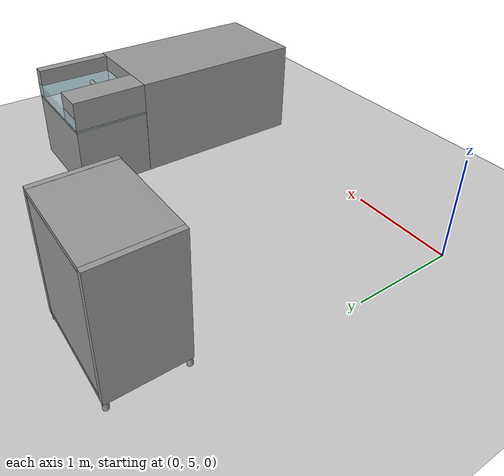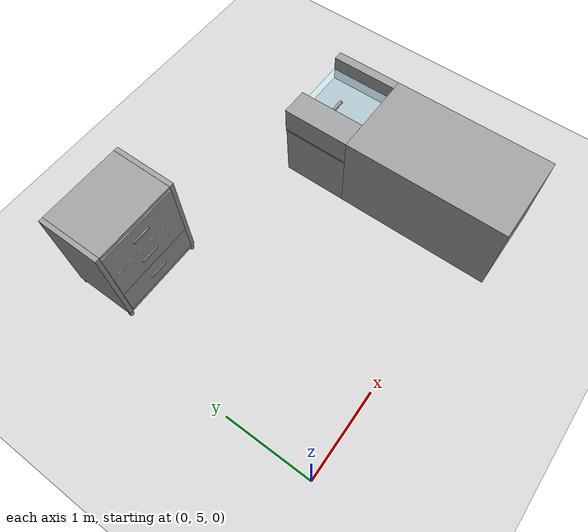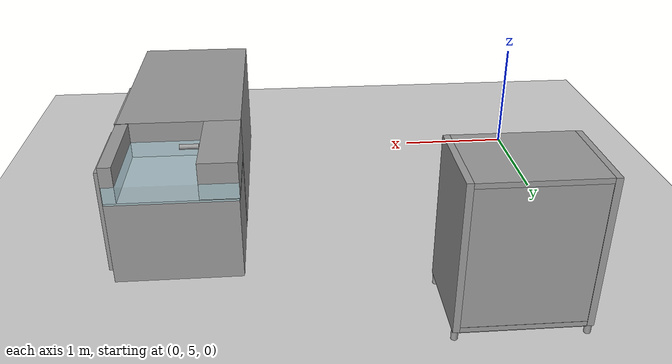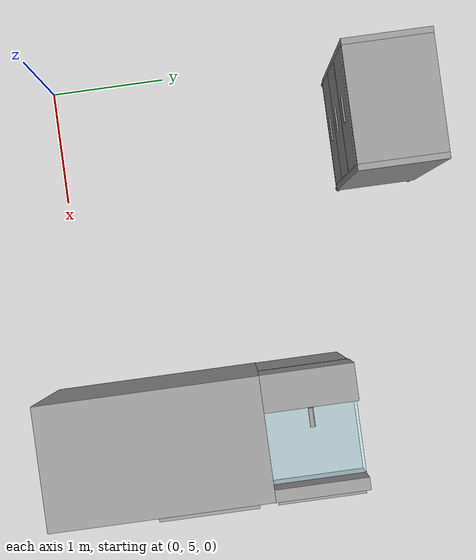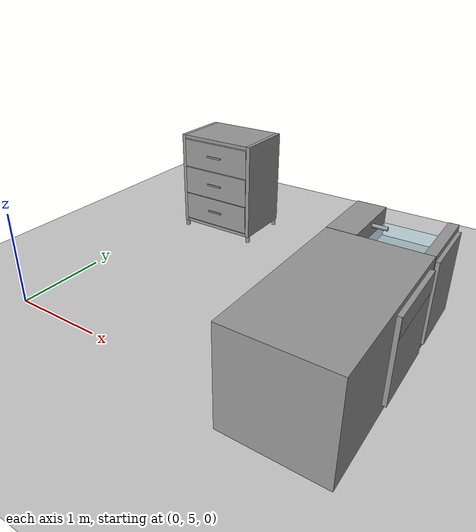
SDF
<sdf version="1.6">
 <world name="default">
  <model name="ground_plane">
   <static>1</static>
   <link name="link">
    <collision name="collision">
     <geometry><plane><normal>0 0 1</normal><size>100 100</size></plane></geometry>
     <surface>
      <contact><collide_bitmask>65535</collide_bitmask></contact>
      <friction><ode><mu>100</mu><mu2>50</mu2></ode></friction>
     </surface>
    </collision>
    <visual name="visual">
     <cast_shadows>0</cast_shadows>
     <geometry><plane><normal>0 0 1</normal><size>100 100</size></plane></geometry>
     <material>
      <script><uri>file://media/materials/scripts/gazebo.material</uri><name>Gazebo/Grey</name></script>
     </material>
    </visual>
   </link>
  </model>
  <model name="my_tall_drawer_0">
   <link name="link">
    <inertial>
     <mass>1</mass>
     <inertia>
      <ixx>0.166667</ixx>
      <ixy>0</ixy>
      <ixz>0</ixz>
      <iyy>0.166667</iyy>
      <iyz>0</iyz>
      <izz>0.166667</izz>
     </inertia>
    </inertial>
    <pose>-0.03613 -0.018536 -0.061909 0 -0 0</pose>
    <visual name="visual">
     <geometry><box><size>0.05 0.9 1.17</size></box></geometry>
     <material>
      <script><name>Gazebo/Grey</name><uri>file://media/materials/scripts/gazebo.material</uri></script>
      <shader type="pixel"><normal_map>__default__</normal_map></shader>
      <ambient>0.9 0.9 0.9 1</ambient>
      <diffuse>0.9 0.9 0.9 1</diffuse>
      <specular>0.01 0.01 0.01 1</specular>
      <emissive>0 0 0 1</emissive>
     </material>
     <pose>0 0 0.725 0 -0 0</pose>
    </visual>
    <collision name="collision">
     <pose>0 0 0.725 0 -0 0</pose>
     <geometry><box><size>0.05 0.9 1.17</size></box></geometry>
     <surface>
      <friction>
       <ode><mu>1</mu><mu2>1</mu2><fdir1>0 0 0</fdir1><slip1>0</slip1><slip2>0</slip2></ode>
       <torsional>
        <coefficient>1</coefficient>
        <patch_radius>0</patch_radius>
        <surface_radius>0</surface_radius>
        <use_patch_radius>1</use_patch_radius>
        <ode><slip>0</slip></ode>
       </torsional>
      </friction>
      <bounce><restitution_coefficient>0</restitution_coefficient><threshold>1e+06</threshold></bounce>
      <contact>
       <collide_without_contact>0</collide_without_contact>
       <collide_without_contact_bitmask>1</collide_without_contact_bitmask>
       <collide_bitmask>1</collide_bitmask>
       <ode>
        <soft_cfm>0</soft_cfm>
        <soft_erp>0.2</soft_erp>
        <kp>1e+13</kp>
        <kd>1</kd>
        <max_vel>0.01</max_vel>
        <min_depth>0</min_depth>
       </ode>
       <bullet>
        <split_impulse>1</split_impulse>
        <split_impulse_penetration_threshold>-0.01</split_impulse_penetration_threshold>
        <soft_cfm>0</soft_cfm>
        <soft_erp>0.2</soft_erp>
        <kp>1e+13</kp>
        <kd>1</kd>
       </bullet>
      </contact>
     </surface>
    </collision>
   </link>
   <link name="link_0">
    <inertial>
     <mass>1</mass>
     <inertia><ixx>0.145833</ixx><ixy>0</ixy><ixz>0</ixz><iyy>0.145833</iyy><iyz>0</iyz><izz>0.125</izz></inertia>
    </inertial>
    <pose>-0.037041 -0.491807 0.517038 0 -0 0</pose>
    <visual name="visual">
     <pose>0 0 -0.47 0 -0 0</pose>
     <geometry><cylinder><radius>0.025</radius><length>0.075</length></cylinder></geometry>
     <material>
      <lighting>1</lighting>
      <script><uri>file://media/materials/scripts/gazebo.material</uri><name>Gazebo/Grey</name></script>
      <shader type="pixel"><normal_map>__default__</normal_map></shader>
      <ambient>0.9 0.9 0.9 0</ambient>
      <diffuse>0.9 0.9 0.9 1</diffuse>
      <specular>0.01 0.01 0.01 1</specular>
      <emissive>0 0 0 1</emissive>
     </material>
    </visual>
    <collision name="collision">
     <pose>0 0 -0.47 0 -0 0</pose>
     <geometry><cylinder><radius>0.025</radius><length>0.075</length></cylinder></geometry>
     <surface>
      <friction>
       <ode><mu>1</mu><mu2>1</mu2><fdir1>0 0 0</fdir1><slip1>0</slip1><slip2>0</slip2></ode>
       <torsional>
        <coefficient>1</coefficient>
        <patch_radius>0</patch_radius>
        <surface_radius>0</surface_radius>
        <use_patch_radius>1</use_patch_radius>
        <ode><slip>0</slip></ode>
       </torsional>
      </friction>
      <bounce><restitution_coefficient>0</restitution_coefficient><threshold>1e+06</threshold></bounce>
      <contact>
       <collide_without_contact>0</collide_without_contact>
       <collide_without_contact_bitmask>1</collide_without_contact_bitmask>
       <collide_bitmask>1</collide_bitmask>
       <ode>
        <soft_cfm>0</soft_cfm>
        <soft_erp>0.2</soft_erp>
        <kp>1e+13</kp>
        <kd>1</kd>
        <max_vel>0.01</max_vel>
        <min_depth>0</min_depth>
       </ode>
       <bullet>
        <split_impulse>1</split_impulse>
        <split_impulse_penetration_threshold>-0.01</split_impulse_penetration_threshold>
        <soft_cfm>0</soft_cfm>
        <soft_erp>0.2</soft_erp>
        <kp>1e+13</kp>
        <kd>1</kd>
       </bullet>
      </contact>
     </surface>
    </collision>
   </link>
   <link name="link_0_clone">
    <inertial>
     <mass>1</mass>
     <inertia>
      <ixx>0.166667</ixx>
      <ixy>0</ixy>
      <ixz>0</ixz>
      <iyy>0.166667</iyy>
      <iyz>0</iyz>
      <izz>0.166667</izz>
     </inertia>
    </inertial>
    <pose>0.649567 -0.03449 1.03588 0 -0 0</pose>
    <gravity>0</gravity>
    <visual name="visual">
     <geometry><box><size>0.012 0.2 0.02</size></box></geometry>
     <material>
      <lighting>1</lighting>
      <script><uri>file://media/materials/scripts/gazebo.material</uri><name>Gazebo/Grey</name></script>
      <shader type="pixel"><normal_map>__default__</normal_map></shader>
      <ambient>0.2 0.2 0.2 0</ambient>
      <diffuse>0.2 0.2 0.2 1</diffuse>
      <specular>0.01 0.01 0.01 1</specular>
      <emissive>0 0 0 1</emissive>
     </material>
    </visual>
    <collision name="collision">
     <geometry><box><size>0.012 0.2 0.02</size></box></geometry>
     <surface>
      <friction>
       <ode><mu>1</mu><mu2>1</mu2><fdir1>0 0 0</fdir1><slip1>0</slip1><slip2>0</slip2></ode>
       <torsional>
        <coefficient>1</coefficient>
        <patch_radius>0</patch_radius>
        <surface_radius>0</surface_radius>
        <use_patch_radius>1</use_patch_radius>
        <ode><slip>0</slip></ode>
       </torsional>
      </friction>
      <bounce><restitution_coefficient>0</restitution_coefficient><threshold>1e+06</threshold></bounce>
      <contact>
       <collide_without_contact>0</collide_without_contact>
       <collide_without_contact_bitmask>1</collide_without_contact_bitmask>
       <collide_bitmask>1</collide_bitmask>
       <ode>
        <soft_cfm>0</soft_cfm>
        <soft_erp>0.2</soft_erp>
        <kp>1e+13</kp>
        <kd>1</kd>
        <max_vel>0.01</max_vel>
        <min_depth>0</min_depth>
       </ode>
       <bullet>
        <split_impulse>1</split_impulse>
        <split_impulse_penetration_threshold>-0.01</split_impulse_penetration_threshold>
        <soft_cfm>0</soft_cfm>
        <soft_erp>0.2</soft_erp>
        <kp>1e+13</kp>
        <kd>1</kd>
       </bullet>
      </contact>
     </surface>
    </collision>
   </link>
   <link name="link_0_clone_0">
    <inertial>
     <mass>1</mass>
     <inertia><ixx>0.145833</ixx><ixy>0</ixy><ixz>0</ixz><iyy>0.145833</iyy><iyz>0</iyz><izz>0.125</izz></inertia>
    </inertial>
    <pose>0.611334 -0.496528 0.517038 0 -0 0</pose>
    <visual name="visual">
     <pose>0 0 -0.47 0 -0 0</pose>
     <geometry><cylinder><radius>0.025</radius><length>0.075</length></cylinder></geometry>
     <material>
      <lighting>1</lighting>
      <script><uri>file://media/materials/scripts/gazebo.material</uri><name>Gazebo/Grey</name></script>
      <shader type="pixel"><normal_map>__default__</normal_map></shader>
      <ambient>0.9 0.9 0.9 0</ambient>
      <diffuse>0.9 0.9 0.9 1</diffuse>
      <specular>0.01 0.01 0.01 1</specular>
      <emissive>0 0 0 1</emissive>
     </material>
    </visual>
    <collision name="collision">
     <pose>0 0 -0.47 0 -0 0</pose>
     <geometry><cylinder><radius>0.025</radius><length>0.075</length></cylinder></geometry>
     <surface>
      <friction>
       <ode><mu>1</mu><mu2>1</mu2><fdir1>0 0 0</fdir1><slip1>0</slip1><slip2>0</slip2></ode>
       <torsional>
        <coefficient>1</coefficient>
        <patch_radius>0</patch_radius>
        <surface_radius>0</surface_radius>
        <use_patch_radius>1</use_patch_radius>
        <ode><slip>0</slip></ode>
       </torsional>
      </friction>
      <bounce><restitution_coefficient>0</restitution_coefficient><threshold>1e+06</threshold></bounce>
      <contact>
       <collide_without_contact>0</collide_without_contact>
       <collide_without_contact_bitmask>1</collide_without_contact_bitmask>
       <collide_bitmask>1</collide_bitmask>
       <ode>
        <soft_cfm>0</soft_cfm>
        <soft_erp>0.2</soft_erp>
        <kp>1e+13</kp>
        <kd>1</kd>
        <max_vel>0.01</max_vel>
        <min_depth>0</min_depth>
       </ode>
       <bullet>
        <split_impulse>1</split_impulse>
        <split_impulse_penetration_threshold>-0.01</split_impulse_penetration_threshold>
        <soft_cfm>0</soft_cfm>
        <soft_erp>0.2</soft_erp>
        <kp>1e+13</kp>
        <kd>1</kd>
       </bullet>
      </contact>
     </surface>
    </collision>
   </link>
   <link name="link_0_clone_1">
    <inertial>
     <mass>1</mass>
     <inertia><ixx>0.145833</ixx><ixy>0</ixy><ixz>0</ixz><iyy>0.145833</iyy><iyz>0</iyz><izz>0.125</izz></inertia>
    </inertial>
    <pose>-0.03182 0.454415 0.517038 0 -0 0</pose>
    <visual name="visual">
     <pose>0 0 -0.47 0 -0 0</pose>
     <geometry><cylinder><radius>0.025</radius><length>0.075</length></cylinder></geometry>
     <material>
      <lighting>1</lighting>
      <script><uri>file://media/materials/scripts/gazebo.material</uri><name>Gazebo/Grey</name></script>
      <shader type="pixel"><normal_map>__default__</normal_map></shader>
      <ambient>0.9 0.9 0.9 0</ambient>
      <diffuse>0.9 0.9 0.9 1</diffuse>
      <specular>0.01 0.01 0.01 1</specular>
      <emissive>0 0 0 1</emissive>
     </material>
    </visual>
    <collision name="collision">
     <pose>0 0 -0.47 0 -0 0</pose>
     <geometry><cylinder><radius>0.025</radius><length>0.075</length></cylinder></geometry>
     <surface>
      <friction>
       <ode><mu>1</mu><mu2>1</mu2><fdir1>0 0 0</fdir1><slip1>0</slip1><slip2>0</slip2></ode>
       <torsional>
        <coefficient>1</coefficient>
        <patch_radius>0</patch_radius>
        <surface_radius>0</surface_radius>
        <use_patch_radius>1</use_patch_radius>
        <ode><slip>0</slip></ode>
       </torsional>
      </friction>
      <bounce><restitution_coefficient>0</restitution_coefficient><threshold>1e+06</threshold></bounce>
      <contact>
       <collide_without_contact>0</collide_without_contact>
       <collide_without_contact_bitmask>1</collide_without_contact_bitmask>
       <collide_bitmask>1</collide_bitmask>
       <ode>
        <soft_cfm>0</soft_cfm>
        <soft_erp>0.2</soft_erp>
        <kp>1e+13</kp>
        <kd>1</kd>
        <max_vel>0.01</max_vel>
        <min_depth>0</min_depth>
       </ode>
       <bullet>
        <split_impulse>1</split_impulse>
        <split_impulse_penetration_threshold>-0.01</split_impulse_penetration_threshold>
        <soft_cfm>0</soft_cfm>
        <soft_erp>0.2</soft_erp>
        <kp>1e+13</kp>
        <kd>1</kd>
       </bullet>
      </contact>
     </surface>
    </collision>
   </link>
   <link name="link_0_clone_2">
    <inertial>
     <mass>1</mass>
     <inertia><ixx>0.145833</ixx><ixy>0</ixy><ixz>0</ixz><iyy>0.145833</iyy><iyz>0</iyz><izz>0.125</izz></inertia>
    </inertial>
    <pose>0.607914 0.452464 0.517038 0 -0 0</pose>
    <visual name="visual">
     <pose>0 0 -0.47 0 -0 0</pose>
     <geometry><cylinder><radius>0.025</radius><length>0.075</length></cylinder></geometry>
     <material>
      <lighting>1</lighting>
      <script><uri>file://media/materials/scripts/gazebo.material</uri><name>Gazebo/Grey</name></script>
      <shader type="pixel"><normal_map>__default__</normal_map></shader>
      <ambient>0.9 0.9 0.9 0</ambient>
      <diffuse>0.9 0.9 0.9 1</diffuse>
      <specular>0.01 0.01 0.01 1</specular>
      <emissive>0 0 0 1</emissive>
     </material>
    </visual>
    <collision name="collision">
     <pose>0 0 -0.47 0 -0 0</pose>
     <geometry><cylinder><radius>0.025</radius><length>0.075</length></cylinder></geometry>
     <surface>
      <friction>
       <ode><mu>1</mu><mu2>1</mu2><fdir1>0 0 0</fdir1><slip1>0</slip1><slip2>0</slip2></ode>
       <torsional>
        <coefficient>1</coefficient>
        <patch_radius>0</patch_radius>
        <surface_radius>0</surface_radius>
        <use_patch_radius>1</use_patch_radius>
        <ode><slip>0</slip></ode>
       </torsional>
      </friction>
      <bounce><restitution_coefficient>0</restitution_coefficient><threshold>1e+06</threshold></bounce>
      <contact>
       <collide_without_contact>0</collide_without_contact>
       <collide_without_contact_bitmask>1</collide_without_contact_bitmask>
       <collide_bitmask>1</collide_bitmask>
       <ode>
        <soft_cfm>0</soft_cfm>
        <soft_erp>0.2</soft_erp>
        <kp>1e+13</kp>
        <kd>1</kd>
        <max_vel>0.01</max_vel>
        <min_depth>0</min_depth>
       </ode>
       <bullet>
        <split_impulse>1</split_impulse>
        <split_impulse_penetration_threshold>-0.01</split_impulse_penetration_threshold>
        <soft_cfm>0</soft_cfm>
        <soft_erp>0.2</soft_erp>
        <kp>1e+13</kp>
        <kd>1</kd>
       </bullet>
      </contact>
     </surface>
    </collision>
   </link>
   <link name="link_0_clone_clone">
    <inertial>
     <mass>1</mass>
     <inertia>
      <ixx>0.166667</ixx>
      <ixy>0</ixy>
      <ixz>0</ixz>
      <iyy>0.166667</iyy>
      <iyz>0</iyz>
      <izz>0.166667</izz>
     </inertia>
    </inertial>
    <pose>0.648574 -0.032127 0.308738 0 -0 0</pose>
    <gravity>0</gravity>
    <visual name="visual">
     <geometry><box><size>0.012 0.2 0.02</size></box></geometry>
     <material>
      <lighting>1</lighting>
      <script><uri>file://media/materials/scripts/gazebo.material</uri><name>Gazebo/Grey</name></script>
      <shader type="pixel"><normal_map>__default__</normal_map></shader>
      <ambient>0.2 0.2 0.2 0</ambient>
      <diffuse>0.2 0.2 0.2 1</diffuse>
      <specular>0.01 0.01 0.01 1</specular>
      <emissive>0 0 0 1</emissive>
     </material>
    </visual>
    <collision name="collision">
     <geometry><box><size>0.012 0.2 0.02</size></box></geometry>
     <surface>
      <friction>
       <ode><mu>1</mu><mu2>1</mu2><fdir1>0 0 0</fdir1><slip1>0</slip1><slip2>0</slip2></ode>
       <torsional>
        <coefficient>1</coefficient>
        <patch_radius>0</patch_radius>
        <surface_radius>0</surface_radius>
        <use_patch_radius>1</use_patch_radius>
        <ode><slip>0</slip></ode>
       </torsional>
      </friction>
      <bounce><restitution_coefficient>0</restitution_coefficient><threshold>1e+06</threshold></bounce>
      <contact>
       <collide_without_contact>0</collide_without_contact>
       <collide_without_contact_bitmask>1</collide_without_contact_bitmask>
       <collide_bitmask>1</collide_bitmask>
       <ode>
        <soft_cfm>0</soft_cfm>
        <soft_erp>0.2</soft_erp>
        <kp>1e+13</kp>
        <kd>1</kd>
        <max_vel>0.01</max_vel>
        <min_depth>0</min_depth>
       </ode>
       <bullet>
        <split_impulse>1</split_impulse>
        <split_impulse_penetration_threshold>-0.01</split_impulse_penetration_threshold>
        <soft_cfm>0</soft_cfm>
        <soft_erp>0.2</soft_erp>
        <kp>1e+13</kp>
        <kd>1</kd>
       </bullet>
      </contact>
     </surface>
    </collision>
   </link>
   <link name="link_0_clone_clone_0">
    <inertial>
     <mass>1</mass>
     <inertia>
      <ixx>0.166667</ixx>
      <ixy>0</ixy>
      <ixz>0</ixz>
      <iyy>0.166667</iyy>
      <iyz>0</iyz>
      <izz>0.166667</izz>
     </inertia>
    </inertial>
    <pose>0.650881 -0.037424 0.670231 0 -0 0</pose>
    <gravity>0</gravity>
    <visual name="visual">
     <geometry><box><size>0.012 0.2 0.02</size></box></geometry>
     <material>
      <lighting>1</lighting>
      <script><uri>file://media/materials/scripts/gazebo.material</uri><name>Gazebo/Grey</name></script>
      <shader type="pixel"><normal_map>__default__</normal_map></shader>
      <ambient>0.2 0.2 0.2 0</ambient>
      <diffuse>0.2 0.2 0.2 1</diffuse>
      <specular>0.01 0.01 0.01 1</specular>
      <emissive>0 0 0 1</emissive>
     </material>
    </visual>
    <collision name="collision">
     <geometry><box><size>0.012 0.2 0.02</size></box></geometry>
     <surface>
      <friction>
       <ode><mu>1</mu><mu2>1</mu2><fdir1>0 0 0</fdir1><slip1>0</slip1><slip2>0</slip2></ode>
       <torsional>
        <coefficient>1</coefficient>
        <patch_radius>0</patch_radius>
        <surface_radius>0</surface_radius>
        <use_patch_radius>1</use_patch_radius>
        <ode><slip>0</slip></ode>
       </torsional>
      </friction>
      <bounce><restitution_coefficient>0</restitution_coefficient><threshold>1e+06</threshold></bounce>
      <contact>
       <collide_without_contact>0</collide_without_contact>
       <collide_without_contact_bitmask>1</collide_without_contact_bitmask>
       <collide_bitmask>1</collide_bitmask>
       <ode>
        <soft_cfm>0</soft_cfm>
        <soft_erp>0.2</soft_erp>
        <kp>1e+13</kp>
        <kd>1</kd>
        <max_vel>0.01</max_vel>
        <min_depth>0</min_depth>
       </ode>
       <bullet>
        <split_impulse>1</split_impulse>
        <split_impulse_penetration_threshold>-0.01</split_impulse_penetration_threshold>
        <soft_cfm>0</soft_cfm>
        <soft_erp>0.2</soft_erp>
        <kp>1e+13</kp>
        <kd>1</kd>
       </bullet>
      </contact>
     </surface>
    </collision>
   </link>
   <link name="link_clone">
    <inertial>
     <mass>1</mass>
     <inertia>
      <ixx>0.166667</ixx>
      <ixy>0</ixy>
      <ixz>0</ixz>
      <iyy>0.166667</iyy>
      <iyz>0</iyz>
      <izz>0.166667</izz>
     </inertia>
    </inertial>
    <pose>0.28891 -0.018651 -1.19613 1.1e-05 -0.001065 2e-06</pose>
    <visual name="visual">
     <geometry><box><size>0.7 0.9 0.04</size></box></geometry>
     <material>
      <script><name>Gazebo/Grey</name><uri>file://media/materials/scripts/gazebo.material</uri></script>
      <shader type="pixel"><normal_map>__default__</normal_map></shader>
      <ambient>0.9 0.9 0.9 1</ambient>
      <diffuse>0.9 0.9 0.9 1</diffuse>
      <specular>0.01 0.01 0.01 1</specular>
      <emissive>0 0 0 1</emissive>
     </material>
     <pose>0 0 1.3 0 -0 0</pose>
    </visual>
    <collision name="collision">
     <pose>0 0 1.3 0 -0 0</pose>
     <geometry><box><size>0.7 0.9 0.04</size></box></geometry>
     <surface>
      <friction>
       <ode><mu>1</mu><mu2>1</mu2><fdir1>0 0 0</fdir1><slip1>0</slip1><slip2>0</slip2></ode>
       <torsional>
        <coefficient>1</coefficient>
        <patch_radius>0</patch_radius>
        <surface_radius>0</surface_radius>
        <use_patch_radius>1</use_patch_radius>
        <ode><slip>0</slip></ode>
       </torsional>
      </friction>
      <bounce><restitution_coefficient>0</restitution_coefficient><threshold>1e+06</threshold></bounce>
      <contact>
       <collide_without_contact>0</collide_without_contact>
       <collide_without_contact_bitmask>1</collide_without_contact_bitmask>
       <collide_bitmask>1</collide_bitmask>
       <ode>
        <soft_cfm>0</soft_cfm>
        <soft_erp>0.2</soft_erp>
        <kp>1e+13</kp>
        <kd>1</kd>
        <max_vel>0.01</max_vel>
        <min_depth>0</min_depth>
       </ode>
       <bullet>
        <split_impulse>1</split_impulse>
        <split_impulse_penetration_threshold>-0.01</split_impulse_penetration_threshold>
        <soft_cfm>0</soft_cfm>
        <soft_erp>0.2</soft_erp>
        <kp>1e+13</kp>
        <kd>1</kd>
       </bullet>
      </contact>
     </surface>
    </collision>
   </link>
   <link name="link_clone_0">
    <inertial>
     <mass>1</mass>
     <inertia>
      <ixx>0.166667</ixx>
      <ixy>0</ixy>
      <ixz>0</ixz>
      <iyy>0.166667</iyy>
      <iyz>0</iyz>
      <izz>0.166667</izz>
     </inertia>
    </inertial>
    <pose>0.285628 -0.49449 -0.040786 0 -0 0</pose>
    <visual name="visual">
     <geometry><box><size>0.05 0.7 1.17</size></box></geometry>
     <material>
      <script><name>Gazebo/Grey</name><uri>file://media/materials/scripts/gazebo.material</uri></script>
      <shader type="pixel"><normal_map>__default__</normal_map></shader>
      <ambient>0.9 0.9 0.9 1</ambient>
      <diffuse>0.9 0.9 0.9 1</diffuse>
      <specular>0.01 0.01 0.01 1</specular>
      <emissive>0 0 0 1</emissive>
     </material>
     <pose>0 0 0.71 0 -0 1.5707</pose>
    </visual>
    <collision name="collision">
     <pose>0 0 0.71 0 -0 1.5707</pose>
     <geometry><box><size>0.05 0.7 1.17</size></box></geometry>
     <surface>
      <friction>
       <ode><mu>1</mu><mu2>1</mu2><fdir1>0 0 0</fdir1><slip1>0</slip1><slip2>0</slip2></ode>
       <torsional>
        <coefficient>1</coefficient>
        <patch_radius>0</patch_radius>
        <surface_radius>0</surface_radius>
        <use_patch_radius>1</use_patch_radius>
        <ode><slip>0</slip></ode>
       </torsional>
      </friction>
      <bounce><restitution_coefficient>0</restitution_coefficient><threshold>1e+06</threshold></bounce>
      <contact>
       <collide_without_contact>0</collide_without_contact>
       <collide_without_contact_bitmask>1</collide_without_contact_bitmask>
       <collide_bitmask>1</collide_bitmask>
       <ode>
        <soft_cfm>0</soft_cfm>
        <soft_erp>0.2</soft_erp>
        <kp>1e+13</kp>
        <kd>1</kd>
        <max_vel>0.01</max_vel>
        <min_depth>0</min_depth>
       </ode>
       <bullet>
        <split_impulse>1</split_impulse>
        <split_impulse_penetration_threshold>-0.01</split_impulse_penetration_threshold>
        <soft_cfm>0</soft_cfm>
        <soft_erp>0.2</soft_erp>
        <kp>1e+13</kp>
        <kd>1</kd>
       </bullet>
      </contact>
     </surface>
    </collision>
   </link>
   <link name="link_clone_0_clone">
    <inertial>
     <mass>1</mass>
     <inertia>
      <ixx>0.166667</ixx>
      <ixy>0</ixy>
      <ixz>0</ixz>
      <iyy>0.166667</iyy>
      <iyz>0</iyz>
      <izz>0.166667</izz>
     </inertia>
    </inertial>
    <pose>0.286617 0.453061 -0.03976 0 -0 0</pose>
    <visual name="visual">
     <geometry><box><size>0.05 0.7 1.17</size></box></geometry>
     <material>
      <script><name>Gazebo/Grey</name><uri>file://media/materials/scripts/gazebo.material</uri></script>
      <shader type="pixel"><normal_map>__default__</normal_map></shader>
      <ambient>0.9 0.9 0.9 1</ambient>
      <diffuse>0.9 0.9 0.9 1</diffuse>
      <specular>0.01 0.01 0.01 1</specular>
      <emissive>0 0 0 1</emissive>
     </material>
     <pose>0 0 0.71 0 -0 1.5707</pose>
    </visual>
    <collision name="collision">
     <pose>0 0 0.71 0 -0 1.5707</pose>
     <geometry><box><size>0.05 0.7 1.17</size></box></geometry>
     <surface>
      <friction>
       <ode><mu>1</mu><mu2>1</mu2><fdir1>0 0 0</fdir1><slip1>0</slip1><slip2>0</slip2></ode>
       <torsional>
        <coefficient>1</coefficient>
        <patch_radius>0</patch_radius>
        <surface_radius>0</surface_radius>
        <use_patch_radius>1</use_patch_radius>
        <ode><slip>0</slip></ode>
       </torsional>
      </friction>
      <bounce><restitution_coefficient>0</restitution_coefficient><threshold>1e+06</threshold></bounce>
      <contact>
       <collide_without_contact>0</collide_without_contact>
       <collide_without_contact_bitmask>1</collide_without_contact_bitmask>
       <collide_bitmask>1</collide_bitmask>
       <ode>
        <soft_cfm>0</soft_cfm>
        <soft_erp>0.2</soft_erp>
        <kp>1e+13</kp>
        <kd>1</kd>
        <max_vel>0.01</max_vel>
        <min_depth>0</min_depth>
       </ode>
       <bullet>
        <split_impulse>1</split_impulse>
        <split_impulse_penetration_threshold>-0.01</split_impulse_penetration_threshold>
        <soft_cfm>0</soft_cfm>
        <soft_erp>0.2</soft_erp>
        <kp>1e+13</kp>
        <kd>1</kd>
       </bullet>
      </contact>
     </surface>
    </collision>
   </link>
   <link name="link_clone_1_clone">
    <inertial>
     <mass>1</mass>
     <inertia>
      <ixx>0.166667</ixx>
      <ixy>0</ixy>
      <ixz>0</ixz>
      <iyy>0.166667</iyy>
      <iyz>0</iyz>
      <izz>0.166667</izz>
     </inertia>
    </inertial>
    <pose>0.617981 -0.022509 -0.070781 0 -0 0</pose>
    <visual name="visual">
     <geometry><box><size>0.05 0.9 0.35</size></box></geometry>
     <material>
      <script><name>Gazebo/Grey</name><uri>file://media/materials/scripts/gazebo.material</uri></script>
      <shader type="pixel"><normal_map>__default__</normal_map></shader>
      <ambient>0.9 0.9 0.9 1</ambient>
      <diffuse>0.9 0.9 0.9 1</diffuse>
      <specular>0.01 0.01 0.01 1</specular>
      <emissive>0 0 0 1</emissive>
     </material>
     <pose>0 0 0.38 0 -0 0</pose>
    </visual>
    <collision name="collision">
     <pose>0 0 0.38 0 -0 0</pose>
     <geometry><box><size>0.05 0.9 0.35</size></box></geometry>
     <surface>
      <friction>
       <ode><mu>1</mu><mu2>1</mu2><fdir1>0 0 0</fdir1><slip1>0</slip1><slip2>0</slip2></ode>
       <torsional>
        <coefficient>1</coefficient>
        <patch_radius>0</patch_radius>
        <surface_radius>0</surface_radius>
        <use_patch_radius>1</use_patch_radius>
        <ode><slip>0</slip></ode>
       </torsional>
      </friction>
      <bounce><restitution_coefficient>0</restitution_coefficient><threshold>1e+06</threshold></bounce>
      <contact>
       <collide_without_contact>0</collide_without_contact>
       <collide_without_contact_bitmask>1</collide_without_contact_bitmask>
       <collide_bitmask>1</collide_bitmask>
       <ode>
        <soft_cfm>0</soft_cfm>
        <soft_erp>0.2</soft_erp>
        <kp>1e+13</kp>
        <kd>1</kd>
        <max_vel>0.01</max_vel>
        <min_depth>0</min_depth>
       </ode>
       <bullet>
        <split_impulse>1</split_impulse>
        <split_impulse_penetration_threshold>-0.01</split_impulse_penetration_threshold>
        <soft_cfm>0</soft_cfm>
        <soft_erp>0.2</soft_erp>
        <kp>1e+13</kp>
        <kd>1</kd>
       </bullet>
      </contact>
     </surface>
    </collision>
   </link>
   <link name="link_clone_1_clone_clone">
    <inertial>
     <mass>1</mass>
     <inertia>
      <ixx>0.166667</ixx>
      <ixy>0</ixy>
      <ixz>0</ixz>
      <iyy>0.166667</iyy>
      <iyz>0</iyz>
      <izz>0.166667</izz>
     </inertia>
    </inertial>
    <pose>0.619149 -0.021678 0.28766 0 -0 0</pose>
    <visual name="visual">
     <geometry><box><size>0.05 0.9 0.35</size></box></geometry>
     <material>
      <script><name>Gazebo/Grey</name><uri>file://media/materials/scripts/gazebo.material</uri></script>
      <shader type="pixel"><normal_map>__default__</normal_map></shader>
      <ambient>0.9 0.9 0.9 1</ambient>
      <diffuse>0.9 0.9 0.9 1</diffuse>
      <specular>0.01 0.01 0.01 1</specular>
      <emissive>0 0 0 1</emissive>
     </material>
     <pose>0 0 0.38 0 -0 0</pose>
    </visual>
    <collision name="collision">
     <pose>0 0 0.38 0 -0 0</pose>
     <geometry><box><size>0.05 0.9 0.35</size></box></geometry>
     <surface>
      <friction>
       <ode><mu>1</mu><mu2>1</mu2><fdir1>0 0 0</fdir1><slip1>0</slip1><slip2>0</slip2></ode>
       <torsional>
        <coefficient>1</coefficient>
        <patch_radius>0</patch_radius>
        <surface_radius>0</surface_radius>
        <use_patch_radius>1</use_patch_radius>
        <ode><slip>0</slip></ode>
       </torsional>
      </friction>
      <bounce><restitution_coefficient>0</restitution_coefficient><threshold>1e+06</threshold></bounce>
      <contact>
       <collide_without_contact>0</collide_without_contact>
       <collide_without_contact_bitmask>1</collide_without_contact_bitmask>
       <collide_bitmask>1</collide_bitmask>
       <ode>
        <soft_cfm>0</soft_cfm>
        <soft_erp>0.2</soft_erp>
        <kp>1e+13</kp>
        <kd>1</kd>
        <max_vel>0.01</max_vel>
        <min_depth>0</min_depth>
       </ode>
       <bullet>
        <split_impulse>1</split_impulse>
        <split_impulse_penetration_threshold>-0.01</split_impulse_penetration_threshold>
        <soft_cfm>0</soft_cfm>
        <soft_erp>0.2</soft_erp>
        <kp>1e+13</kp>
        <kd>1</kd>
       </bullet>
      </contact>
     </surface>
    </collision>
   </link>
   <link name="link_clone_1_clone_clone_clone">
    <inertial>
     <mass>1</mass>
     <inertia>
      <ixx>0.166667</ixx>
      <ixy>0</ixy>
      <ixz>0</ixz>
      <iyy>0.166667</iyy>
      <iyz>0</iyz>
      <izz>0.166667</izz>
     </inertia>
    </inertial>
    <pose>0.616281 -0.021483 0.647925 0 -0 0</pose>
    <visual name="visual">
     <geometry><box><size>0.05 0.9 0.35</size></box></geometry>
     <material>
      <script><name>Gazebo/Grey</name><uri>file://media/materials/scripts/gazebo.material</uri></script>
      <shader type="pixel"><normal_map>__default__</normal_map></shader>
      <ambient>0.9 0.9 0.9 1</ambient>
      <diffuse>0.9 0.9 0.9 1</diffuse>
      <specular>0.01 0.01 0.01 1</specular>
      <emissive>0 0 0 1</emissive>
     </material>
     <pose>0 0 0.38 0 -0 0</pose>
    </visual>
    <collision name="collision">
     <pose>0 0 0.38 0 -0 0</pose>
     <geometry><box><size>0.05 0.9 0.35</size></box></geometry>
     <surface>
      <friction>
       <ode><mu>1</mu><mu2>1</mu2><fdir1>0 0 0</fdir1><slip1>0</slip1><slip2>0</slip2></ode>
       <torsional>
        <coefficient>1</coefficient>
        <patch_radius>0</patch_radius>
        <surface_radius>0</surface_radius>
        <use_patch_radius>1</use_patch_radius>
        <ode><slip>0</slip></ode>
       </torsional>
      </friction>
      <bounce><restitution_coefficient>0</restitution_coefficient><threshold>1e+06</threshold></bounce>
      <contact>
       <collide_without_contact>0</collide_without_contact>
       <collide_without_contact_bitmask>1</collide_without_contact_bitmask>
       <collide_bitmask>1</collide_bitmask>
       <ode>
        <soft_cfm>0</soft_cfm>
        <soft_erp>0.2</soft_erp>
        <kp>1e+13</kp>
        <kd>1</kd>
        <max_vel>0.01</max_vel>
        <min_depth>0</min_depth>
       </ode>
       <bullet>
        <split_impulse>1</split_impulse>
        <split_impulse_penetration_threshold>-0.01</split_impulse_penetration_threshold>
        <soft_cfm>0</soft_cfm>
        <soft_erp>0.2</soft_erp>
        <kp>1e+13</kp>
        <kd>1</kd>
       </bullet>
      </contact>
     </surface>
    </collision>
   </link>
   <link name="link_clone_clone_0">
    <inertial>
     <mass>1</mass>
     <inertia>
      <ixx>0.166667</ixx>
      <ixy>0</ixy>
      <ixz>0</ixz>
      <iyy>0.166667</iyy>
      <iyz>0</iyz>
      <izz>0.166667</izz>
     </inertia>
    </inertial>
    <pose>0.286116 -0.021247 1.16784 2.2e-05 0.000604 0.000114</pose>
    <visual name="visual">
     <geometry><box><size>0.7 0.9 0.04</size></box></geometry>
     <material>
      <script><name>Gazebo/Grey</name><uri>file://media/materials/scripts/gazebo.material</uri></script>
      <shader type="pixel"><normal_map>__default__</normal_map></shader>
      <ambient>0.9 0.9 0.9 1</ambient>
      <diffuse>0.9 0.9 0.9 1</diffuse>
      <specular>0.01 0.01 0.01 1</specular>
      <emissive>0 0 0 1</emissive>
     </material>
     <pose>0 0 0.067 0 -0 0</pose>
    </visual>
    <collision name="collision">
     <pose>0 0 0.067 0 -0 0</pose>
     <geometry><box><size>0.7 0.9 0.04</size></box></geometry>
     <surface>
      <friction>
       <ode><mu>1</mu><mu2>1</mu2><fdir1>0 0 0</fdir1><slip1>0</slip1><slip2>0</slip2></ode>
       <torsional>
        <coefficient>1</coefficient>
        <patch_radius>0</patch_radius>
        <surface_radius>0</surface_radius>
        <use_patch_radius>1</use_patch_radius>
        <ode><slip>0</slip></ode>
       </torsional>
      </friction>
      <bounce><restitution_coefficient>0</restitution_coefficient><threshold>1e+06</threshold></bounce>
      <contact>
       <collide_without_contact>0</collide_without_contact>
       <collide_without_contact_bitmask>1</collide_without_contact_bitmask>
       <collide_bitmask>1</collide_bitmask>
       <ode>
        <soft_cfm>0</soft_cfm>
        <soft_erp>0.2</soft_erp>
        <kp>1e+13</kp>
        <kd>1</kd>
        <max_vel>0.01</max_vel>
        <min_depth>0</min_depth>
       </ode>
       <bullet>
        <split_impulse>1</split_impulse>
        <split_impulse_penetration_threshold>-0.01</split_impulse_penetration_threshold>
        <soft_cfm>0</soft_cfm>
        <soft_erp>0.2</soft_erp>
        <kp>1e+13</kp>
        <kd>1</kd>
       </bullet>
      </contact>
     </surface>
    </collision>
   </link>
   <static>1</static>
   <pose>0.746975 8.06062 0 0 0 -1.57245</pose>
  </model>
  <model name="my_kitchen">
   <link name="link_0_clone">
    <inertial>
     <mass>1</mass>
     <inertia><ixx>0.145833</ixx><ixy>0</ixy><ixz>0</ixz><iyy>0.145833</iyy><iyz>0</iyz><izz>0.125</izz></inertia>
    </inertial>
    <pose>-1.12966 -0.882077 0.956076 0 -0 0</pose>
    <gravity>0</gravity>
    <visual name="visual">
     <pose>0 0 0 0 1.5707 0</pose>
     <geometry><cylinder><radius>0.02</radius><length>0.15</length></cylinder></geometry>
     <material>
      <lighting>1</lighting>
      <script><uri>file://media/materials/scripts/gazebo.material</uri><name>Gazebo/Grey</name></script>
      <shader type="pixel"><normal_map>__default__</normal_map></shader>
      <ambient>0.2 0.2 0.2 1</ambient>
      <diffuse>0.2 0.2 0.2 1</diffuse>
      <specular>0.01 0.01 0.01 1</specular>
      <emissive>0 0 0 1</emissive>
     </material>
    </visual>
    <collision name="collision">
     <pose>0 0 0 0 1.5707 0</pose>
     <geometry><cylinder><radius>0.02</radius><length>0.15</length></cylinder></geometry>
     <surface>
      <friction>
       <ode><mu>1</mu><mu2>1</mu2><fdir1>0 0 0</fdir1><slip1>0</slip1><slip2>0</slip2></ode>
       <torsional>
        <coefficient>1</coefficient>
        <patch_radius>0</patch_radius>
        <surface_radius>0</surface_radius>
        <use_patch_radius>1</use_patch_radius>
        <ode><slip>0</slip></ode>
       </torsional>
      </friction>
      <bounce><restitution_coefficient>0</restitution_coefficient><threshold>1e+06</threshold></bounce>
      <contact>
       <collide_without_contact>0</collide_without_contact>
       <collide_without_contact_bitmask>1</collide_without_contact_bitmask>
       <collide_bitmask>1</collide_bitmask>
       <ode>
        <soft_cfm>0</soft_cfm>
        <soft_erp>0.2</soft_erp>
        <kp>1e+13</kp>
        <kd>1</kd>
        <max_vel>0.01</max_vel>
        <min_depth>0</min_depth>
       </ode>
       <bullet>
        <split_impulse>1</split_impulse>
        <split_impulse_penetration_threshold>-0.01</split_impulse_penetration_threshold>
        <soft_cfm>0</soft_cfm>
        <soft_erp>0.2</soft_erp>
        <kp>1e+13</kp>
        <kd>1</kd>
       </bullet>
      </contact>
     </surface>
    </collision>
   </link>
   <link name="link_clone">
    <inertial>
     <mass>1</mass>
     <inertia>
      <ixx>0.166667</ixx>
      <ixy>0</ixy>
      <ixz>0</ixz>
      <iyy>0.166667</iyy>
      <iyz>0</iyz>
      <izz>0.166667</izz>
     </inertia>
    </inertial>
    <pose>-1.0136 -2.15012 0 0 -0 0</pose>
    <visual name="visual">
     <geometry><box><size>1 1.8 1</size></box></geometry>
     <material>
      <script><name>Gazebo/Grey</name><uri>file://media/materials/scripts/gazebo.material</uri></script>
      <shader type="pixel"><normal_map>__default__</normal_map></shader>
      <ambient>0.8 0.8 0.8 1</ambient>
      <diffuse>0.65 0.65 0.65 1</diffuse>
      <specular>0.01 0.01 0.01 1</specular>
      <emissive>0 0 0 1</emissive>
     </material>
     <pose>0 0 0.5 0 -0 0</pose>
    </visual>
    <collision name="collision">
     <pose>0 0 0.5 0 -0 0</pose>
     <geometry><box><size>1 1.8 1</size></box></geometry>
     <surface>
      <friction>
       <ode><mu>1</mu><mu2>1</mu2><fdir1>0 0 0</fdir1><slip1>0</slip1><slip2>0</slip2></ode>
       <torsional>
        <coefficient>1</coefficient>
        <patch_radius>0</patch_radius>
        <surface_radius>0</surface_radius>
        <use_patch_radius>1</use_patch_radius>
        <ode><slip>0</slip></ode>
       </torsional>
      </friction>
      <bounce><restitution_coefficient>0</restitution_coefficient><threshold>1e+06</threshold></bounce>
      <contact>
       <collide_without_contact>0</collide_without_contact>
       <collide_without_contact_bitmask>1</collide_without_contact_bitmask>
       <collide_bitmask>1</collide_bitmask>
       <ode>
        <soft_cfm>0</soft_cfm>
        <soft_erp>0.2</soft_erp>
        <kp>1e+13</kp>
        <kd>1</kd>
        <max_vel>0.01</max_vel>
        <min_depth>0</min_depth>
       </ode>
       <bullet>
        <split_impulse>1</split_impulse>
        <split_impulse_penetration_threshold>-0.01</split_impulse_penetration_threshold>
        <soft_cfm>0</soft_cfm>
        <soft_erp>0.2</soft_erp>
        <kp>1e+13</kp>
        <kd>1</kd>
       </bullet>
      </contact>
     </surface>
    </collision>
   </link>
   <link name="link_clone_clone">
    <inertial>
     <mass>1</mass>
     <inertia>
      <ixx>0.166667</ixx>
      <ixy>0</ixy>
      <ixz>0</ixz>
      <iyy>0.166667</iyy>
      <iyz>0</iyz>
      <izz>0.166667</izz>
     </inertia>
    </inertial>
    <pose>-1.36532 -0.875399 0.352062 0 -0 0</pose>
    <visual name="visual">
     <geometry><box><size>0.3 0.75 0.3</size></box></geometry>
     <material>
      <script><name>Gazebo/Grey</name><uri>file://media/materials/scripts/gazebo.material</uri></script>
      <shader type="pixel"><normal_map>__default__</normal_map></shader>
      <ambient>0.8 0.8 0.8 1</ambient>
      <diffuse>0.65 0.65 0.65 1</diffuse>
      <specular>0.01 0.01 0.01 1</specular>
      <emissive>0 0 0 1</emissive>
     </material>
     <pose>0 0 0.5 0 -0 0</pose>
    </visual>
    <collision name="collision">
     <pose>0 0 0.5 0 -0 0</pose>
     <geometry><box><size>0.3 0.75 0.3</size></box></geometry>
     <surface>
      <friction>
       <ode><mu>1</mu><mu2>1</mu2><fdir1>0 0 0</fdir1><slip1>0</slip1><slip2>0</slip2></ode>
       <torsional>
        <coefficient>1</coefficient>
        <patch_radius>0</patch_radius>
        <surface_radius>0</surface_radius>
        <use_patch_radius>1</use_patch_radius>
        <ode><slip>0</slip></ode>
       </torsional>
      </friction>
      <bounce><restitution_coefficient>0</restitution_coefficient><threshold>1e+06</threshold></bounce>
      <contact>
       <collide_without_contact>0</collide_without_contact>
       <collide_without_contact_bitmask>1</collide_without_contact_bitmask>
       <collide_bitmask>1</collide_bitmask>
       <ode>
        <soft_cfm>0</soft_cfm>
        <soft_erp>0.2</soft_erp>
        <kp>1e+13</kp>
        <kd>1</kd>
        <max_vel>0.01</max_vel>
        <min_depth>0</min_depth>
       </ode>
       <bullet>
        <split_impulse>1</split_impulse>
        <split_impulse_penetration_threshold>-0.01</split_impulse_penetration_threshold>
        <soft_cfm>0</soft_cfm>
        <soft_erp>0.2</soft_erp>
        <kp>1e+13</kp>
        <kd>1</kd>
       </bullet>
      </contact>
     </surface>
    </collision>
   </link>
   <link name="link_clone_clone_clone">
    <inertial>
     <mass>1</mass>
     <inertia>
      <ixx>0.166667</ixx>
      <ixy>0</ixy>
      <ixz>0</ixz>
      <iyy>0.166667</iyy>
      <iyz>0</iyz>
      <izz>0.166667</izz>
     </inertia>
    </inertial>
    <pose>-1.01121 -0.87639 -0.152519 0 -0 0</pose>
    <visual name="visual">
     <geometry><box><size>1 0.75 0.7</size></box></geometry>
     <material>
      <script><name>Gazebo/Grey</name><uri>file://media/materials/scripts/gazebo.material</uri></script>
      <shader type="pixel"><normal_map>__default__</normal_map></shader>
      <ambient>0.8 0.8 0.8 1</ambient>
      <diffuse>0.65 0.65 0.65 1</diffuse>
      <specular>0.01 0.01 0.01 1</specular>
      <emissive>0 0 0 1</emissive>
     </material>
     <pose>0 0 0.5 0 -0 0</pose>
    </visual>
    <collision name="collision">
     <pose>0 0 0.5 0 -0 0</pose>
     <geometry><box><size>1 0.75 0.7</size></box></geometry>
     <surface>
      <friction>
       <ode><mu>1</mu><mu2>1</mu2><fdir1>0 0 0</fdir1><slip1>0</slip1><slip2>0</slip2></ode>
       <torsional>
        <coefficient>1</coefficient>
        <patch_radius>0</patch_radius>
        <surface_radius>0</surface_radius>
        <use_patch_radius>1</use_patch_radius>
        <ode><slip>0</slip></ode>
       </torsional>
      </friction>
      <bounce><restitution_coefficient>0</restitution_coefficient><threshold>1e+06</threshold></bounce>
      <contact>
       <collide_without_contact>0</collide_without_contact>
       <collide_without_contact_bitmask>1</collide_without_contact_bitmask>
       <collide_bitmask>1</collide_bitmask>
       <ode>
        <soft_cfm>0</soft_cfm>
        <soft_erp>0.2</soft_erp>
        <kp>1e+13</kp>
        <kd>1</kd>
        <max_vel>0.01</max_vel>
        <min_depth>0</min_depth>
       </ode>
       <bullet>
        <split_impulse>1</split_impulse>
        <split_impulse_penetration_threshold>-0.01</split_impulse_penetration_threshold>
        <soft_cfm>0</soft_cfm>
        <soft_erp>0.2</soft_erp>
        <kp>1e+13</kp>
        <kd>1</kd>
       </bullet>
      </contact>
     </surface>
    </collision>
   </link>
   <link name="link_clone_clone_clone_0">
    <inertial>
     <mass>1</mass>
     <inertia>
      <ixx>0.166667</ixx>
      <ixy>0</ixy>
      <ixz>0</ixz>
      <iyy>0.166667</iyy>
      <iyz>0</iyz>
      <izz>0.166667</izz>
     </inertia>
    </inertial>
    <pose>-0.56153 -0.875379 0.346728 0 -0 0</pose>
    <gravity>0</gravity>
    <visual name="visual">
     <geometry><box><size>0.1 0.75 0.3</size></box></geometry>
     <material>
      <script><name>Gazebo/Grey</name><uri>file://media/materials/scripts/gazebo.material</uri></script>
      <shader type="pixel"><normal_map>__default__</normal_map></shader>
      <ambient>0.8 0.8 0.8 1</ambient>
      <diffuse>0.65 0.65 0.65 1</diffuse>
      <specular>0.01 0.01 0.01 1</specular>
      <emissive>0 0 0 1</emissive>
     </material>
     <pose>0 0 0.5 0 -0 0</pose>
    </visual>
    <collision name="collision">
     <pose>0 0 0.5 0 -0 0</pose>
     <geometry><box><size>0.1 0.75 0.3</size></box></geometry>
     <surface>
      <friction>
       <ode><mu>1</mu><mu2>1</mu2><fdir1>0 0 0</fdir1><slip1>0</slip1><slip2>0</slip2></ode>
       <torsional>
        <coefficient>1</coefficient>
        <patch_radius>0</patch_radius>
        <surface_radius>0</surface_radius>
        <use_patch_radius>1</use_patch_radius>
        <ode><slip>0</slip></ode>
       </torsional>
      </friction>
      <bounce><restitution_coefficient>0</restitution_coefficient><threshold>1e+06</threshold></bounce>
      <contact>
       <collide_without_contact>0</collide_without_contact>
       <collide_without_contact_bitmask>1</collide_without_contact_bitmask>
       <collide_bitmask>1</collide_bitmask>
       <ode>
        <soft_cfm>0</soft_cfm>
        <soft_erp>0.2</soft_erp>
        <kp>1e+13</kp>
        <kd>1</kd>
        <max_vel>0.01</max_vel>
        <min_depth>0</min_depth>
       </ode>
       <bullet>
        <split_impulse>1</split_impulse>
        <split_impulse_penetration_threshold>-0.01</split_impulse_penetration_threshold>
        <soft_cfm>0</soft_cfm>
        <soft_erp>0.2</soft_erp>
        <kp>1e+13</kp>
        <kd>1</kd>
       </bullet>
      </contact>
     </surface>
    </collision>
   </link>
   <link name="link_clone_clone_clone_0_clone_clone_clone_0">
    <inertial>
     <mass>1</mass>
     <inertia>
      <ixx>0.166667</ixx>
      <ixy>0</ixy>
      <ixz>0</ixz>
      <iyy>0.166667</iyy>
      <iyz>0</iyz>
      <izz>0.166667</izz>
     </inertia>
    </inertial>
    <pose>-0.499193 -1.7796 0.016041 0 -0 0</pose>
    <gravity>0</gravity>
    <visual name="visual">
     <geometry><box><size>0.05 0.8 0.85</size></box></geometry>
     <material>
      <script><name>Gazebo/Grey</name><uri>file://media/materials/scripts/gazebo.material</uri></script>
      <shader type="pixel"><normal_map>__default__</normal_map></shader>
      <ambient>0.9 0.9 0.9 1</ambient>
      <diffuse>0.9 0.9 0.9 1</diffuse>
      <specular>0.01 0.01 0.01 1</specular>
      <emissive>0 0 0 1</emissive>
     </material>
     <pose>0 0 0.5 0 -0 0</pose>
    </visual>
    <collision name="collision">
     <pose>0 0 0.5 0 -0 0</pose>
     <geometry><box><size>0.05 0.8 0.85</size></box></geometry>
     <surface>
      <friction>
       <ode><mu>1</mu><mu2>1</mu2><fdir1>0 0 0</fdir1><slip1>0</slip1><slip2>0</slip2></ode>
       <torsional>
        <coefficient>1</coefficient>
        <patch_radius>0</patch_radius>
        <surface_radius>0</surface_radius>
        <use_patch_radius>1</use_patch_radius>
        <ode><slip>0</slip></ode>
       </torsional>
      </friction>
      <bounce><restitution_coefficient>0</restitution_coefficient><threshold>1e+06</threshold></bounce>
      <contact>
       <collide_without_contact>0</collide_without_contact>
       <collide_without_contact_bitmask>1</collide_without_contact_bitmask>
       <collide_bitmask>1</collide_bitmask>
       <ode>
        <soft_cfm>0</soft_cfm>
        <soft_erp>0.2</soft_erp>
        <kp>1e+13</kp>
        <kd>1</kd>
        <max_vel>0.01</max_vel>
        <min_depth>0</min_depth>
       </ode>
       <bullet>
        <split_impulse>1</split_impulse>
        <split_impulse_penetration_threshold>-0.01</split_impulse_penetration_threshold>
        <soft_cfm>0</soft_cfm>
        <soft_erp>0.2</soft_erp>
        <kp>1e+13</kp>
        <kd>1</kd>
       </bullet>
      </contact>
     </surface>
    </collision>
   </link>
   <link name="link_clone_clone_clone_0_clone_clone_clone_0_clone">
    <inertial>
     <mass>1</mass>
     <inertia>
      <ixx>0.166667</ixx>
      <ixy>0</ixy>
      <ixz>0</ixz>
      <iyy>0.166667</iyy>
      <iyz>0</iyz>
      <izz>0.166667</izz>
     </inertia>
    </inertial>
    <pose>-0.50046 -0.88146 0.016041 0 -0 0</pose>
    <visual name="visual">
     <geometry><box><size>0.05 0.7 0.85</size></box></geometry>
     <material>
      <script><name>Gazebo/Grey</name><uri>file://media/materials/scripts/gazebo.material</uri></script>
      <shader type="pixel"><normal_map>__default__</normal_map></shader>
      <ambient>0.4 0.4 0.4 1</ambient>
      <diffuse>0.4 0.4 0.4 1</diffuse>
      <specular>0.01 0.01 0.01 1</specular>
      <emissive>0 0 0 1</emissive>
     </material>
     <pose>0 0 0.5 0 -0 0</pose>
    </visual>
    <collision name="collision">
     <pose>0 0 0.5 0 -0 0</pose>
     <geometry><box><size>0.05 0.7 0.85</size></box></geometry>
     <surface>
      <friction>
       <ode><mu>1</mu><mu2>1</mu2><fdir1>0 0 0</fdir1><slip1>0</slip1><slip2>0</slip2></ode>
       <torsional>
        <coefficient>1</coefficient>
        <patch_radius>0</patch_radius>
        <surface_radius>0</surface_radius>
        <use_patch_radius>1</use_patch_radius>
        <ode><slip>0</slip></ode>
       </torsional>
      </friction>
      <bounce><restitution_coefficient>0</restitution_coefficient><threshold>1e+06</threshold></bounce>
      <contact>
       <collide_without_contact>0</collide_without_contact>
       <collide_without_contact_bitmask>1</collide_without_contact_bitmask>
       <collide_bitmask>1</collide_bitmask>
       <ode>
        <soft_cfm>0</soft_cfm>
        <soft_erp>0.2</soft_erp>
        <kp>1e+13</kp>
        <kd>1</kd>
        <max_vel>0.01</max_vel>
        <min_depth>0</min_depth>
       </ode>
       <bullet>
        <split_impulse>1</split_impulse>
        <split_impulse_penetration_threshold>-0.01</split_impulse_penetration_threshold>
        <soft_cfm>0</soft_cfm>
        <soft_erp>0.2</soft_erp>
        <kp>1e+13</kp>
        <kd>1</kd>
       </bullet>
      </contact>
     </surface>
    </collision>
   </link>
   <link name="link_clone_clone_clone_0_clone_clone_clone_1">
    <inertial>
     <mass>1</mass>
     <inertia>
      <ixx>0.166667</ixx>
      <ixy>0</ixy>
      <ixz>0</ixz>
      <iyy>0.166667</iyy>
      <iyz>0</iyz>
      <izz>0.166667</izz>
     </inertia>
    </inertial>
    <pose>-0.494653 -1.77941 0.34131 0 -0 0</pose>
    <visual name="visual">
     <geometry><box><size>0.05 0.8 0.2</size></box></geometry>
     <material>
      <script><name>Gazebo/Grey</name><uri>file://media/materials/scripts/gazebo.material</uri></script>
      <shader type="pixel"><normal_map>__default__</normal_map></shader>
      <ambient>0.4 0.4 0.4 1</ambient>
      <diffuse>0.4 0.4 0.4 1</diffuse>
      <specular>0.01 0.01 0.01 1</specular>
      <emissive>0 0 0 1</emissive>
     </material>
     <pose>0 0 0.5 0 -0 0</pose>
    </visual>
    <collision name="collision">
     <pose>0 0 0.5 0 -0 0</pose>
     <geometry><box><size>0.05 0.8 0.2</size></box></geometry>
     <surface>
      <friction>
       <ode><mu>1</mu><mu2>1</mu2><fdir1>0 0 0</fdir1><slip1>0</slip1><slip2>0</slip2></ode>
       <torsional>
        <coefficient>1</coefficient>
        <patch_radius>0</patch_radius>
        <surface_radius>0</surface_radius>
        <use_patch_radius>1</use_patch_radius>
        <ode><slip>0</slip></ode>
       </torsional>
      </friction>
      <bounce><restitution_coefficient>0</restitution_coefficient><threshold>1e+06</threshold></bounce>
      <contact>
       <collide_without_contact>0</collide_without_contact>
       <collide_without_contact_bitmask>1</collide_without_contact_bitmask>
       <collide_bitmask>1</collide_bitmask>
       <ode>
        <soft_cfm>0</soft_cfm>
        <soft_erp>0.2</soft_erp>
        <kp>1e+13</kp>
        <kd>1</kd>
        <max_vel>0.01</max_vel>
        <min_depth>0</min_depth>
       </ode>
       <bullet>
        <split_impulse>1</split_impulse>
        <split_impulse_penetration_threshold>-0.01</split_impulse_penetration_threshold>
        <soft_cfm>0</soft_cfm>
        <soft_erp>0.2</soft_erp>
        <kp>1e+13</kp>
        <kd>1</kd>
       </bullet>
      </contact>
     </surface>
    </collision>
   </link>
   <link name="link_clone_clone_clone_clone">
    <inertial>
     <mass>1</mass>
     <inertia>
      <ixx>0.166667</ixx>
      <ixy>0</ixy>
      <ixz>0</ixz>
      <iyy>0.166667</iyy>
      <iyz>0</iyz>
      <izz>0.166667</izz>
     </inertia>
    </inertial>
    <pose>-1.0153 -0.871963 0.25818 0 -0 0</pose>
    <visual name="visual">
     <geometry><box><size>1 0.75 0.15</size></box></geometry>
     <material>
      <script><name>Gazebo/Grey</name><uri>file://media/materials/scripts/gazebo.material</uri></script>
      <shader type="pixel"><normal_map>__default__</normal_map></shader>
      <ambient>0.75 0.93 0.98 1</ambient>
      <diffuse>0.75 0.93 0.98 1</diffuse>
      <specular>0.01 0.01 0.01 1</specular>
      <emissive>0 0 0 1</emissive>
     </material>
     <pose>0 0 0.5 0 -0 0</pose>
     <transparency>0.5</transparency>
    </visual>
    <collision name="collision">
     <pose>0 0 0.5 0 -0 0</pose>
     <geometry><box><size>1 0.75 0.15</size></box></geometry>
     <surface>
      <friction>
       <ode><mu>1</mu><mu2>1</mu2><fdir1>0 0 0</fdir1><slip1>0</slip1><slip2>0</slip2></ode>
       <torsional>
        <coefficient>1</coefficient>
        <patch_radius>0</patch_radius>
        <surface_radius>0</surface_radius>
        <use_patch_radius>1</use_patch_radius>
        <ode><slip>0</slip></ode>
       </torsional>
      </friction>
      <bounce><restitution_coefficient>0</restitution_coefficient><threshold>1e+06</threshold></bounce>
      <contact>
       <collide_without_contact>0</collide_without_contact>
       <collide_without_contact_bitmask>1</collide_without_contact_bitmask>
       <collide_bitmask>1</collide_bitmask>
       <ode>
        <soft_cfm>0</soft_cfm>
        <soft_erp>0.2</soft_erp>
        <kp>1e+13</kp>
        <kd>1</kd>
        <max_vel>0.01</max_vel>
        <min_depth>0</min_depth>
       </ode>
       <bullet>
        <split_impulse>1</split_impulse>
        <split_impulse_penetration_threshold>-0.01</split_impulse_penetration_threshold>
        <soft_cfm>0</soft_cfm>
        <soft_erp>0.2</soft_erp>
        <kp>1e+13</kp>
        <kd>1</kd>
       </bullet>
      </contact>
     </surface>
    </collision>
   </link>
   <static>1</static>
   <pose>4.18115 7.73532 0 0 -0 0</pose>
  </model>
 </world>
</sdf>
